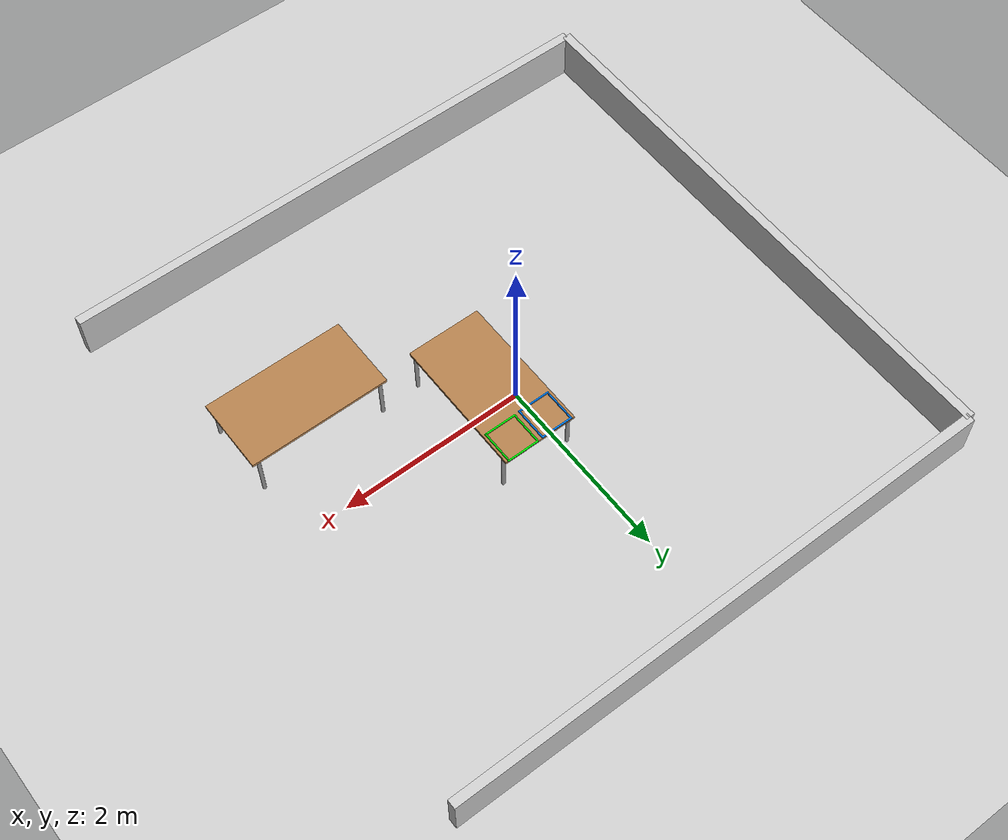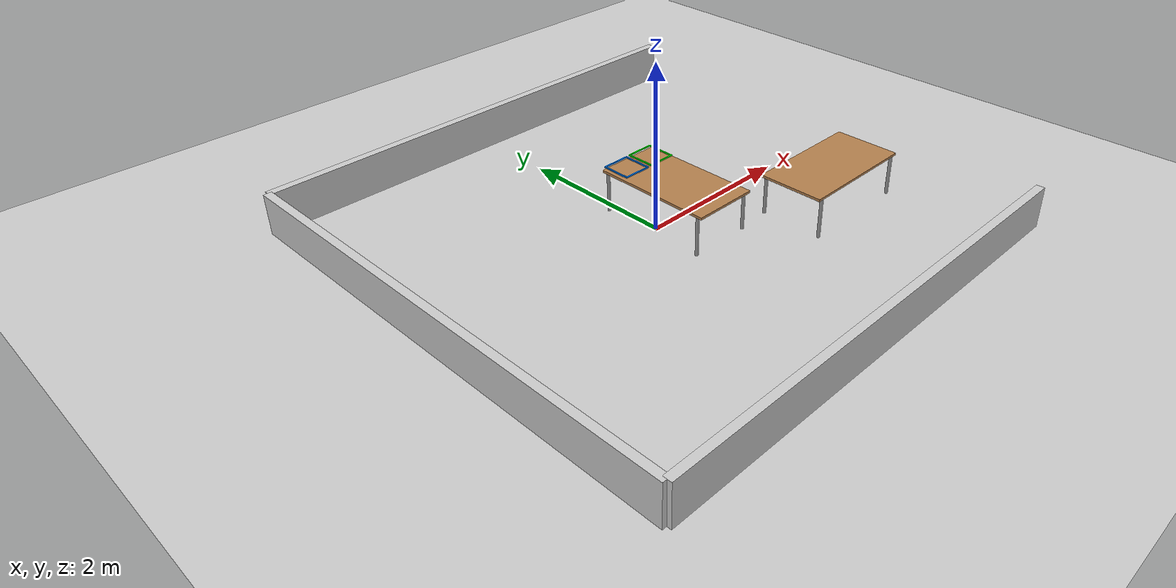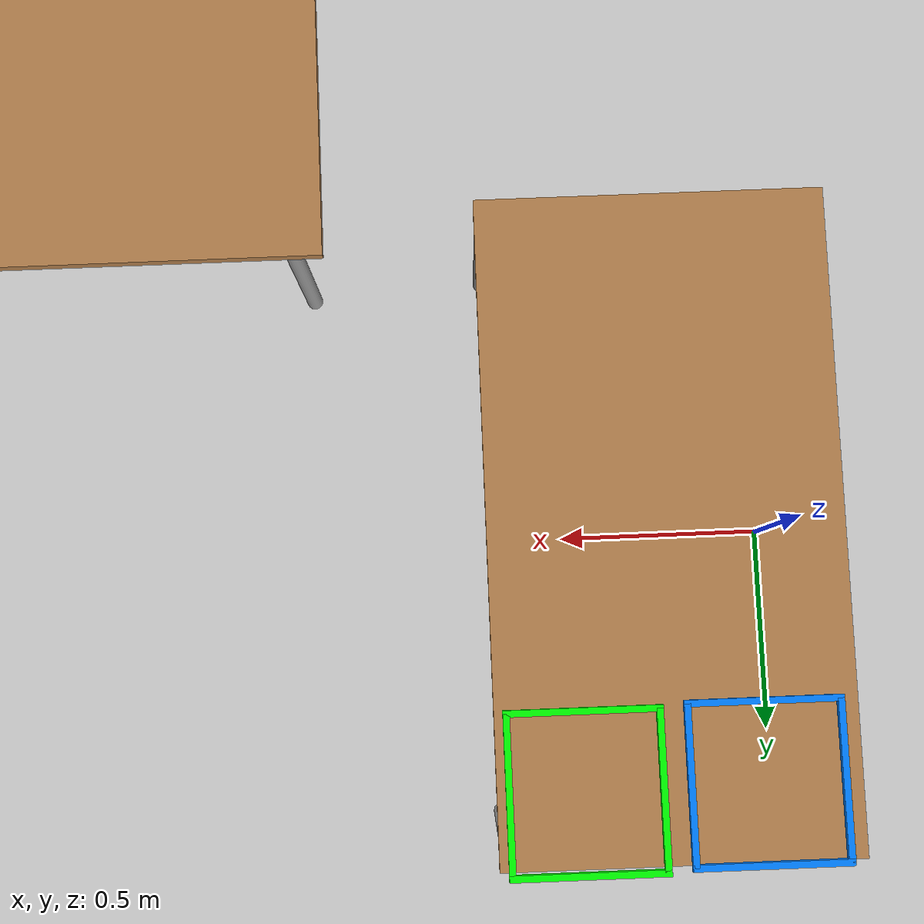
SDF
<sdf version="1.7">
 <world name="default">
  <light name="sun" type="directional">
   <pose>0 0 10 0 -0 0</pose>
   <diffuse>0.8 0.8 0.8 1</diffuse>
   <specular>0.2 0.2 0.2 1</specular>
   <attenuation>
    <range>1000</range>
    <constant>0.9</constant>
    <linear>0.01</linear>
    <quadratic>0.001</quadratic>
   </attenuation>
   <direction>-0.5 0.1 -0.9</direction>
   <spot><inner_angle>0</inner_angle><outer_angle>0</outer_angle><falloff>0</falloff></spot>
  </light>
  <model name="ground_plane">
   <static>1</static>
   <link name="link">
    <collision name="collision">
     <geometry><plane><normal>0 0 1</normal><size>100 100</size></plane></geometry>
     <surface>
      <contact><collide_bitmask>65535</collide_bitmask></contact>
      <friction><ode><mu>100</mu><mu2>50</mu2></ode></friction>
     </surface>
    </collision>
    <visual name="visual">
     <cast_shadows>0</cast_shadows>
     <geometry><plane><normal>0 0 1</normal><size>100 100</size></plane></geometry>
     <material>
      <script><uri>file://media/materials/scripts/gazebo.material</uri><name>Gazebo/Grey</name></script>
     </material>
    </visual>
   </link>
  </model>
  <model name="table">
   <static>1</static>
   <link name="link">
    <collision name="surface">
     <pose>0 0 0.5 0 -0 0</pose>
     <geometry><box><size>1.5 0.8 0.03</size></box></geometry>
    </collision>
    <visual name="visual1">
     <pose>0 0 0.5 0 -0 0</pose>
     <geometry><box><size>1.5 0.8 0.03</size></box></geometry>
     <material>
      <script><uri>file://media/materials/scripts/gazebo.material</uri><name>Gazebo/Wood</name></script>
     </material>
    </visual>
    <collision name="front_left_leg">
     <pose>0.68 0.38 0.25 0 -0 0</pose>
     <geometry><cylinder><radius>0.02</radius><length>0.5</length></cylinder></geometry>
    </collision>
    <visual name="front_left_leg">
     <pose>0.68 0.38 0.25 0 -0 0</pose>
     <geometry><cylinder><radius>0.02</radius><length>0.5</length></cylinder></geometry>
     <material>
      <script><uri>file://media/materials/scripts/gazebo.material</uri><name>Gazebo/Grey</name></script>
     </material>
    </visual>
    <collision name="front_right_leg">
     <pose>0.68 -0.38 0.25 0 -0 0</pose>
     <geometry><cylinder><radius>0.02</radius><length>0.5</length></cylinder></geometry>
    </collision>
    <visual name="front_right_leg">
     <pose>0.68 -0.38 0.25 0 -0 0</pose>
     <geometry><cylinder><radius>0.02</radius><length>0.5</length></cylinder></geometry>
     <material>
      <script><uri>file://media/materials/scripts/gazebo.material</uri><name>Gazebo/Grey</name></script>
     </material>
    </visual>
    <collision name="back_right_leg">
     <pose>-0.68 -0.38 0.25 0 -0 0</pose>
     <geometry><cylinder><radius>0.02</radius><length>0.5</length></cylinder></geometry>
    </collision>
    <visual name="back_right_leg">
     <pose>-0.68 -0.38 0.25 0 -0 0</pose>
     <geometry><cylinder><radius>0.02</radius><length>0.5</length></cylinder></geometry>
     <material>
      <script><uri>file://media/materials/scripts/gazebo.material</uri><name>Gazebo/Grey</name></script>
     </material>
    </visual>
    <collision name="back_left_leg">
     <pose>-0.68 0.38 0.25 0 -0 0</pose>
     <geometry><cylinder><radius>0.02</radius><length>0.5</length></cylinder></geometry>
    </collision>
    <visual name="back_left_leg">
     <pose>-0.68 0.38 0.25 0 -0 0</pose>
     <geometry><cylinder><radius>0.02</radius><length>0.5</length></cylinder></geometry>
     <material>
      <script><uri>file://media/materials/scripts/gazebo.material</uri><name>Gazebo/Grey</name></script>
     </material>
    </visual>
   </link>
   <pose>0.3 0 -0.015 0 -0 1.57</pose>
  </model>
  <model name="north_wall">
   <static>1</static>
   <link name="link">
    <collision name="collision"><geometry><box><size>6 0.1 0.5</size></box></geometry></collision>
    <visual name="visual">
     <geometry><box><size>6 0.1 0.5</size></box></geometry>
     <material><ambient>0.8 0.8 0.8 1</ambient><diffuse>0.8 0.8 0.8 1</diffuse></material>
    </visual>
   </link>
   <pose>0 3 0.25 0 -0 0</pose>
  </model>
  <model name="south_wall">
   <static>1</static>
   <link name="link">
    <collision name="collision"><geometry><box><size>6 0.1 0.5</size></box></geometry></collision>
    <visual name="visual">
     <geometry><box><size>6 0.1 0.5</size></box></geometry>
     <material><ambient>0.8 0.8 0.8 1</ambient><diffuse>0.8 0.8 0.8 1</diffuse></material>
    </visual>
   </link>
   <pose>0 -3 0.25 0 -0 0</pose>
  </model>
  <model name="west_wall">
   <static>1</static>
   <link name="link">
    <collision name="collision"><geometry><box><size>0.1 6 0.5</size></box></geometry></collision>
    <visual name="visual">
     <geometry><box><size>0.1 6 0.5</size></box></geometry>
     <material><ambient>0.8 0.8 0.8 1</ambient><diffuse>0.8 0.8 0.8 1</diffuse></material>
    </visual>
   </link>
   <pose>-3 0 0.25 0 -0 0</pose>
  </model>
  <model name="green_frame">
   <static>1</static>
   <pose>0.506053 0.584464 0.52 0 -0 0</pose>
   <link name="top">
    <pose>0 0.175 0 0 -0 0</pose>
    <collision name="collision"><geometry><box><size>0.35 0.015 0.015</size></box></geometry></collision>
    <visual name="visual">
     <geometry><box><size>0.35 0.015 0.015</size></box></geometry>
     <material><ambient>0 0.8 0 1</ambient><diffuse>0 1 0 1</diffuse><specular>0.3 0.3 0.3 1</specular></material>
    </visual>
   </link>
   <link name="bottom">
    <pose>0 -0.175 0 0 -0 0</pose>
    <collision name="collision"><geometry><box><size>0.35 0.015 0.015</size></box></geometry></collision>
    <visual name="visual">
     <geometry><box><size>0.35 0.015 0.015</size></box></geometry>
     <material><ambient>0 0.8 0 1</ambient><diffuse>0 1 0 1</diffuse><specular>0.3 0.3 0.3 1</specular></material>
    </visual>
   </link>
   <link name="left">
    <pose>-0.1675 0 0 0 -0 0</pose>
    <collision name="collision"><geometry><box><size>0.015 0.35 0.015</size></box></geometry></collision>
    <visual name="visual">
     <geometry><box><size>0.015 0.35 0.015</size></box></geometry>
     <material><ambient>0 0.8 0 1</ambient><diffuse>0 1 0 1</diffuse><specular>0.3 0.3 0.3 1</specular></material>
    </visual>
   </link>
   <link name="right">
    <pose>0.1675 0 0 0 -0 0</pose>
    <collision name="collision"><geometry><box><size>0.015 0.35 0.015</size></box></geometry></collision>
    <visual name="visual">
     <geometry><box><size>0.015 0.35 0.015</size></box></geometry>
     <material><ambient>0 0.8 0 1</ambient><diffuse>0 1 0 1</diffuse><specular>0.3 0.3 0.3 1</specular></material>
    </visual>
   </link>
  </model>
  <model name="blue_frame">
   <static>1</static>
   <pose>0.111193 0.577427 0.52 0 -0 0</pose>
   <link name="top">
    <pose>0 0.175 0 0 -0 0</pose>
    <collision name="collision"><geometry><box><size>0.35 0.015 0.015</size></box></geometry></collision>
    <visual name="visual">
     <geometry><box><size>0.35 0.015 0.015</size></box></geometry>
     <material>
      <ambient>0 0 0.8 1</ambient>
      <diffuse>0 0.5 1 1</diffuse>
      <specular>0.3 0.3 0.3 1</specular>
     </material>
    </visual>
   </link>
   <link name="bottom">
    <pose>0 -0.175 0 0 -0 0</pose>
    <collision name="collision"><geometry><box><size>0.35 0.015 0.015</size></box></geometry></collision>
    <visual name="visual">
     <geometry><box><size>0.35 0.015 0.015</size></box></geometry>
     <material>
      <ambient>0 0 0.8 1</ambient>
      <diffuse>0 0.5 1 1</diffuse>
      <specular>0.3 0.3 0.3 1</specular>
     </material>
    </visual>
   </link>
   <link name="left">
    <pose>-0.1675 0 0 0 -0 0</pose>
    <collision name="collision"><geometry><box><size>0.015 0.35 0.015</size></box></geometry></collision>
    <visual name="visual">
     <geometry><box><size>0.015 0.35 0.015</size></box></geometry>
     <material>
      <ambient>0 0 0.8 1</ambient>
      <diffuse>0 0.5 1 1</diffuse>
      <specular>0.3 0.3 0.3 1</specular>
     </material>
    </visual>
   </link>
   <link name="right">
    <pose>0.1675 0 0 0 -0 0</pose>
    <collision name="collision"><geometry><box><size>0.015 0.35 0.015</size></box></geometry></collision>
    <visual name="visual">
     <geometry><box><size>0.015 0.35 0.015</size></box></geometry>
     <material>
      <ambient>0 0 0.8 1</ambient>
      <diffuse>0 0.5 1 1</diffuse>
      <specular>0.3 0.3 0.3 1</specular>
     </material>
    </visual>
   </link>
  </model>
  <gravity>0 0 -9.8</gravity>
  <physics type="ode">
   <max_step_size>0.001</max_step_size>
   <real_time_factor>1</real_time_factor>
   <real_time_update_rate>1000</real_time_update_rate>
  </physics>
  <magnetic_field>6e-06 2.3e-05 -4.2e-05</magnetic_field>
  <atmosphere type="adiabatic"/>
  <scene><ambient>0.4 0.4 0.4 1</ambient><background>0.7 0.7 0.7 1</background><shadows>1</shadows></scene>
  <spherical_coordinates>
   <surface_model>EARTH_WGS84</surface_model>
   <latitude_deg>0</latitude_deg>
   <longitude_deg>0</longitude_deg>
   <elevation>0</elevation>
   <heading_deg>0</heading_deg>
  </spherical_coordinates>
  <model name="challenge_table">
   <static>1</static>
   <link name="link">
    <collision name="surface">
     <pose>0 0 0.5 0 -0 0</pose>
     <geometry><box><size>1.5 0.8 0.03</size></box></geometry>
     <surface><friction><ode><mu>0.6</mu><mu2>0.6</mu2></ode></friction></surface>
    </collision>
    <visual name="visual1">
     <pose>0 0 0.5 0 -0 0</pose>
     <geometry><box><size>1.5 0.8 0.03</size></box></geometry>
     <material>
      <script><uri>file://media/materials/scripts/gazebo.material</uri><name>Gazebo/Wood</name></script>
     </material>
    </visual>
    <collision name="front_left_leg">
     <pose>0.68 0.38 0.25 0 -0 0</pose>
     <geometry><cylinder><radius>0.02</radius><length>0.5</length></cylinder></geometry>
    </collision>
    <visual name="front_left_leg">
     <pose>0.68 0.38 0.25 0 -0 0</pose>
     <geometry><cylinder><radius>0.02</radius><length>0.5</length></cylinder></geometry>
     <material>
      <script><uri>file://media/materials/scripts/gazebo.material</uri><name>Gazebo/Grey</name></script>
     </material>
    </visual>
    <collision name="front_right_leg">
     <pose>0.68 -0.38 0.25 0 -0 0</pose>
     <geometry><cylinder><radius>0.02</radius><length>0.5</length></cylinder></geometry>
    </collision>
    <visual name="front_right_leg">
     <pose>0.68 -0.38 0.25 0 -0 0</pose>
     <geometry><cylinder><radius>0.02</radius><length>0.5</length></cylinder></geometry>
     <material>
      <script><uri>file://media/materials/scripts/gazebo.material</uri><name>Gazebo/Grey</name></script>
     </material>
    </visual>
    <collision name="back_right_leg">
     <pose>-0.68 -0.38 0.25 0 -0 0</pose>
     <geometry><cylinder><radius>0.02</radius><length>0.5</length></cylinder></geometry>
    </collision>
    <visual name="back_right_leg">
     <pose>-0.68 -0.38 0.25 0 -0 0</pose>
     <geometry><cylinder><radius>0.02</radius><length>0.5</length></cylinder></geometry>
     <material>
      <script><uri>file://media/materials/scripts/gazebo.material</uri><name>Gazebo/Grey</name></script>
     </material>
    </visual>
    <collision name="back_left_leg">
     <pose>-0.68 0.38 0.25 0 -0 0</pose>
     <geometry><cylinder><radius>0.02</radius><length>0.5</length></cylinder></geometry>
    </collision>
    <visual name="back_left_leg">
     <pose>-0.68 0.38 0.25 0 -0 0</pose>
     <geometry><cylinder><radius>0.02</radius><length>0.5</length></cylinder></geometry>
     <material>
      <script><uri>file://media/materials/scripts/gazebo.material</uri><name>Gazebo/Grey</name></script>
     </material>
    </visual>
   </link>
   <pose>1.79567 -1.03136 0 0 -0 0</pose>
  </model>
 </world>
</sdf>
